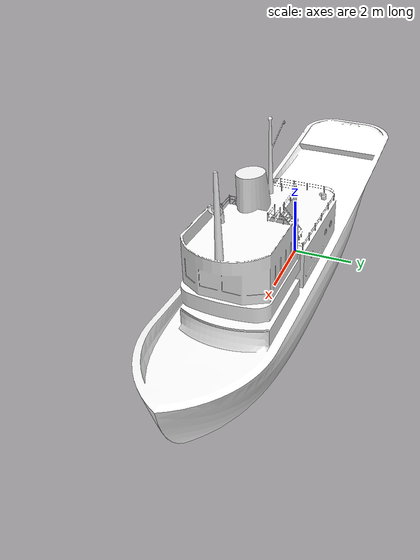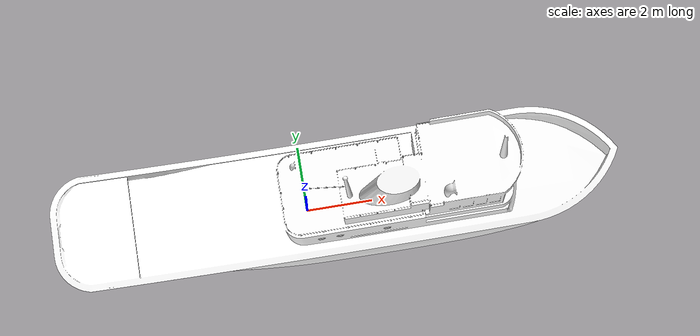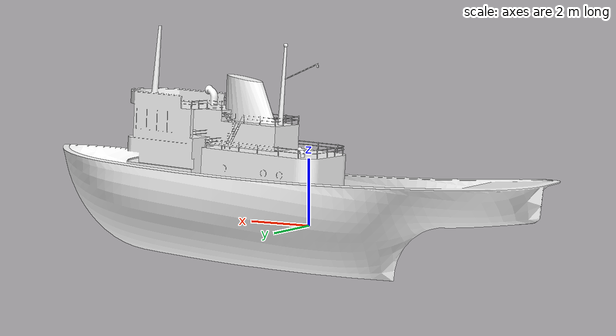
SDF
<?xml version='1.0' ?>
<sdf version="1.6">
  <model name="vessel_g">
    <static>true</static>
    <link name="link">
      <enable_wind>true</enable_wind>
      <inertial>
        <mass>3000.0</mass>
        <inertia>
          <ixx>13000</ixx>
          <ixy>0.0</ixy>
          <ixz>0.0</ixz>
          <iyy>125000</iyy>
          <iyz>0.0</iyz>
          <izz>130000</izz>
        </inertia>
      </inertial>
      <visual name="visual">
        <pose>4 0 0 0 0 1.5708</pose>
        <geometry>
          <mesh>
            <uri>meshes/Boat07.dae</uri>
            <scale>0.7 0.7 0.7</scale>
          </mesh>
        </geometry>
        <material>
          <diffuse>1.0 1.0 1.0</diffuse>
          <specular>1.0 1.0 1.0</specular>
          <pbr>
            <metal>
              <albedo_map>materials/textures/Boat07_Albedo.jpg</albedo_map>
              <normal_map>materials/textures/Boat07_Normal.jpg</normal_map>
              <roughness_map>materials/textures/Boat07_Roughness.jpg</roughness_map>
            </metal>
          </pbr>
        </material>
      </visual>
      <collision name="collision">
        <pose>4 0 0 0 0 1.5708</pose>
        <geometry>
          <mesh>
            <uri>meshes/Boat07.dae</uri>
            <scale>0.7 0.7 0.7</scale>
          </mesh>
        </geometry>
      </collision>
    </link>
  </model>
</sdf>
